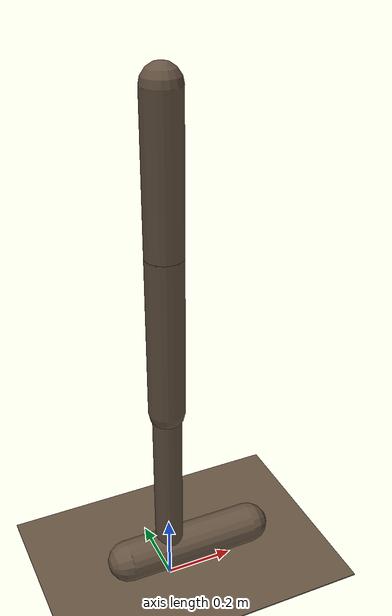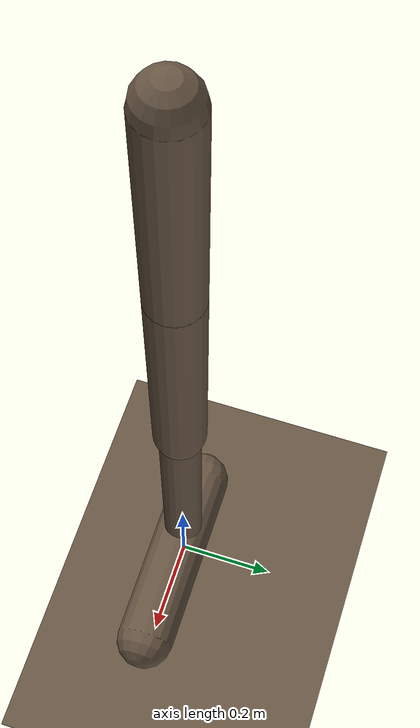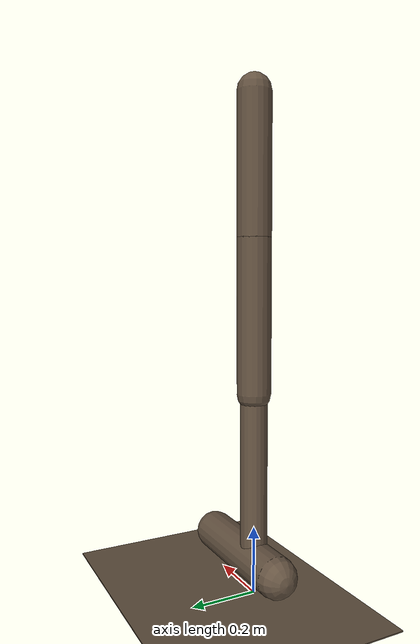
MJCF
<mujoco model="hopper">
  <compiler angle="radian" autolimits="true"/>
  <default class="main">
    <joint limited="true" armature="1" damping="1"/>
    <geom contype="0" conaffinity="0" condim="3" solimp="0.8 0.8 0.01" margin="0.001" material="geom" rgba="0.4 0.33 0.26 1.0"/>
    <motor ctrlrange="-.4 .4"/>
  </default>

  <option timestep="0.002" iterations="4" ls_iterations="6"/>

  <custom>
    <numeric data="10000" name="constraint_limit_stiffness"/>
    <numeric data="10000" name="constraint_stiffness"/>
    <numeric data="20" name="constraint_ang_damping"/>
    <numeric data="20" name="constraint_vel_damping"/>
    <numeric data="1" name="vel_damping"/>
    <numeric data="-0.05" name="ang_damping"/>
    <numeric data="1" name="spring_mass_scale"/>
    <numeric data="1" name="spring_inertia_scale"/>
    <numeric data="15" name="solver_maxls"/>
  </custom>

  <visual>
    <map znear="0.02"/>
  </visual>

  <worldbody>
    <geom name="floor" size="20 20 0.125" type="plane" conaffinity="1" condim="3" material="MatPlane"/>
    <geom name="track" type="box" size="20 0.8 0.001" pos="0 0 0.0012" material="MatTrack" contype="0" conaffinity="0"/>
    <light pos="0 0 1.3" dir="0 0 -1" directional="true" cutoff="100" exponent="1" diffuse="1 1 1" specular="0.1 0.1 0.1"/>
    <camera name="fixedfar" pos="0 -5 5" zaxis="0 -1 1" mode="fixed"/>
    <body name="torso" pos="0 0 1.25">
      <joint name="rootx" pos="0 0 0" axis="1 0 0" limited="false" type="slide" armature="0" damping="0"/>
      <joint name="rootz" pos="0 0 0" axis="0 0 1" limited="false" type="slide" armature="0" damping="0"/>
      <joint name="rooty" pos="0 0 0" axis="0 1 0" limited="false" armature="0" damping="0"/>

      <geom name="torso_geom" size="0.05 0.2" type="capsule" friction="0.9 0.005 0.0001"/>

      <!-- Added site for sensors -->
      <site name="hopper" pos="0 0 0" size="0.03" type="sphere" rgba="1 0 0 .1"/>

      <!-- Cameras -->
      <camera name="track" pos="0 -3 -0.25" quat="0.707107 0.707107 0 0" mode="trackcom"/>
      <camera name="vision" pos="0 0 0.15" xyaxes="0 -1 0 .4 0 1" fovy="90"/>
      <camera name="vision_back" pos="0 0 0.15" xyaxes="0 1 0 0 0 1" fovy="90"/>

      <body name="thigh" pos="0 0 -0.2">
        <joint name="thigh_joint" pos="0 0 0" axis="0 -1 0" range="-2.61799 0"/>
        <geom name="thigh_geom" size="0.05 0.225" pos="0 0 -0.225" type="capsule" friction="0.9 0.005 0.0001"/>

        <body name="leg" pos="0 0 -0.7">
          <joint name="leg_joint" pos="0 0 0.25" axis="0 -1 0" range="-2.61799 0"/>
          <geom name="leg_geom" size="0.04 0.25" type="capsule" friction="0.9 0.005 0.0001"/>

          <body name="foot" pos="0.13 0 -0.35">
            <joint name="foot_joint" pos="-0.13 0 0.1" axis="0 -1 0" range="-0.785398 0.785398"/>
            <geom name="foot_geom" size="0.06 0.195" pos="-0.065 0 0.1"
                  quat="0.707107 0 -0.707107 0"
                  type="capsule" contype="1" friction="2 0.005 0.0001"/>
          </body>
        </body>
      </body>
    </body>
  </worldbody>

  <!-- Sensors added, attached to the torso site -->
  <sensor>
    <!-- Observation sensors -->
    <accelerometer site="hopper" name="accelerometer"/>
    <velocimeter site="hopper" name="velocimeter"/>
    <gyro site="hopper" name="gyro"/>
    <magnetometer site="hopper" name="magnetometer"/>

    <!-- Intrinsic constraint sensors -->
    <subtreecom body="torso" name="subtreecom"/>
    <subtreelinvel body="torso" name="subtreelinvel"/>
    <subtreeangmom body="torso" name="subtreeangmom"/>
  </sensor>

  <actuator>
    <motor ctrlrange="-1.0 1.0" gear="200.0" joint="thigh_joint"/>
    <motor ctrlrange="-1.0 1.0" gear="200.0" joint="leg_joint"/>
    <motor ctrlrange="-1.0 1.0" gear="200.0" joint="foot_joint"/>
  </actuator>

  <asset>
    <texture type="skybox" builtin="gradient" rgb1=".50 .55 .62" rgb2="0.08 0.10 0.14" width="100" height="100"/>
    <texture builtin="flat" height="1278" mark="cross" markrgb="1 1 1"
             name="texgeom" random="0.01" rgb1="0.8 0.6 0.4" rgb2="0.8 0.6 0.4"
             type="cube" width="127"/>
    <texture builtin="checker" height="100" name="texplane"
             rgb1="0.68 0.70 0.74" rgb2="0.62 0.64 0.68" type="2d" width="100"/>
    <material name="MatPlane" reflectance="0.18" shininess="0.1" specular="0.1"
              texrepeat="60 60" texture="texplane"/>
    <material name="MatTrack" rgba="0.72 0.74 0.78 0.35" reflectance="0.1" shininess="0.05" specular="0.02"/>
    <material name="geom" texture="texgeom" texuniform="true"/>
  </asset>
</mujoco>
